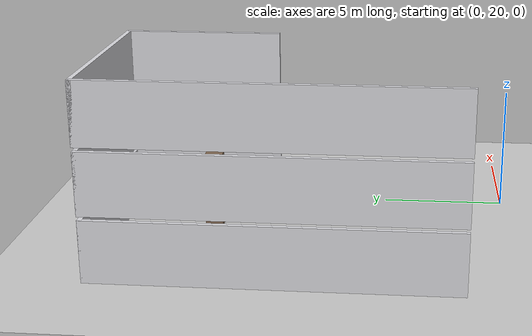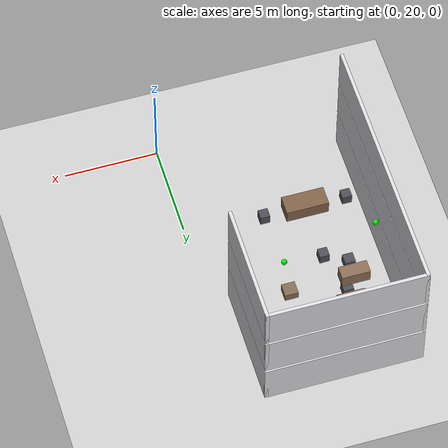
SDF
<sdf version="1.7">
 <world name="generated_world">
  <include><uri>model://sun</uri></include>
  <include><uri>model://ground_plane</uri></include>
  <model name="generated_building">
   <static>true</static>
   <link name="floor_0_room_2_corridor_wall_upper">
    <pose>-1.1900 32.7025 1.2250 0.0000 0.0000 0.0000</pose>
    <collision name="floor_0_room_2_corridor_wall_upper_collision">
     <geometry><box><size>0.1800 6.4150 2.4500</size></box></geometry>
    </collision>
    <visual name="floor_0_room_2_corridor_wall_upper_visual">
     <geometry><box><size>0.1800 6.4150 2.4500</size></box></geometry>
     <material><ambient>0.86 0.86 0.88 1</ambient><diffuse>0.86 0.86 0.88 1</diffuse></material>
    </visual>
    <gravity>false</gravity>
   </link>
   <link name="floor_0_room_2_west_wall">
    <pose>-9.4100 28.8950 1.2250 0.0000 0.0000 0.0000</pose>
    <collision name="floor_0_room_2_west_wall_collision">
     <geometry><box><size>0.1800 14.0300 2.4500</size></box></geometry>
    </collision>
    <visual name="floor_0_room_2_west_wall_visual">
     <geometry><box><size>0.1800 14.0300 2.4500</size></box></geometry>
     <material><ambient>0.86 0.86 0.88 1</ambient><diffuse>0.86 0.86 0.88 1</diffuse></material>
    </visual>
    <gravity>false</gravity>
   </link>
   <link name="floor_0_room_2_north_wall">
    <pose>-5.3000 35.8200 1.2250 0.0000 0.0000 0.0000</pose>
    <collision name="floor_0_room_2_north_wall_collision">
     <geometry><box><size>8.4000 0.1800 2.4500</size></box></geometry>
    </collision>
    <visual name="floor_0_room_2_north_wall_visual">
     <geometry><box><size>8.4000 0.1800 2.4500</size></box></geometry>
     <material><ambient>0.86 0.86 0.88 1</ambient><diffuse>0.86 0.86 0.88 1</diffuse></material>
    </visual>
    <gravity>false</gravity>
   </link>
   <link name="floor_0_room_2_desk">
    <pose>-7.0000 31.9525 0.4500 0.0000 0.0000 0.0000</pose>
    <collision name="floor_0_room_2_desk_collision">
     <geometry><box><size>1.5000 0.7000 0.7500</size></box></geometry>
    </collision>
    <visual name="floor_0_room_2_desk_visual">
     <geometry><box><size>1.5000 0.7000 0.7500</size></box></geometry>
     <material><ambient>0.54 0.43 0.34 1</ambient><diffuse>0.54 0.43 0.34 1</diffuse></material>
    </visual>
    <gravity>false</gravity>
   </link>
   <link name="floor_0_room_2_chair">
    <pose>-7.0000 31.0525 0.2800 0.0000 0.0000 0.0000</pose>
    <collision name="floor_0_room_2_chair_collision">
     <geometry><box><size>0.5500 0.5500 0.5500</size></box></geometry>
    </collision>
    <visual name="floor_0_room_2_chair_visual">
     <geometry><box><size>0.5500 0.5500 0.5500</size></box></geometry>
     <material><ambient>0.30 0.30 0.34 1</ambient><diffuse>0.30 0.30 0.34 1</diffuse></material>
    </visual>
    <gravity>false</gravity>
   </link>
   <link name="floor_0_room_2_side_table">
    <pose>-3.6000 31.9525 0.3200 0.0000 0.0000 0.0000</pose>
    <collision name="floor_0_room_2_side_table_collision">
     <geometry><box><size>0.7000 0.7000 0.4500</size></box></geometry>
    </collision>
    <visual name="floor_0_room_2_side_table_visual">
     <geometry><box><size>0.7000 0.7000 0.4500</size></box></geometry>
     <material><ambient>0.52 0.42 0.33 1</ambient><diffuse>0.52 0.42 0.33 1</diffuse></material>
    </visual>
    <gravity>false</gravity>
   </link>
   <link name="floor_1_room_2_corridor_wall_upper">
    <pose>-1.1900 32.7025 3.8250 0.0000 0.0000 0.0000</pose>
    <collision name="floor_1_room_2_corridor_wall_upper_collision">
     <geometry><box><size>0.1800 6.4150 2.4500</size></box></geometry>
    </collision>
    <visual name="floor_1_room_2_corridor_wall_upper_visual">
     <geometry><box><size>0.1800 6.4150 2.4500</size></box></geometry>
     <material><ambient>0.86 0.86 0.88 1</ambient><diffuse>0.86 0.86 0.88 1</diffuse></material>
    </visual>
    <gravity>false</gravity>
   </link>
   <link name="floor_1_room_2_west_wall">
    <pose>-9.4100 28.8950 3.8250 0.0000 0.0000 0.0000</pose>
    <collision name="floor_1_room_2_west_wall_collision">
     <geometry><box><size>0.1800 14.0300 2.4500</size></box></geometry>
    </collision>
    <visual name="floor_1_room_2_west_wall_visual">
     <geometry><box><size>0.1800 14.0300 2.4500</size></box></geometry>
     <material><ambient>0.86 0.86 0.88 1</ambient><diffuse>0.86 0.86 0.88 1</diffuse></material>
    </visual>
    <gravity>false</gravity>
   </link>
   <link name="floor_1_room_2_north_wall">
    <pose>-5.3000 35.8200 3.8250 0.0000 0.0000 0.0000</pose>
    <collision name="floor_1_room_2_north_wall_collision">
     <geometry><box><size>8.4000 0.1800 2.4500</size></box></geometry>
    </collision>
    <visual name="floor_1_room_2_north_wall_visual">
     <geometry><box><size>8.4000 0.1800 2.4500</size></box></geometry>
     <material><ambient>0.86 0.86 0.88 1</ambient><diffuse>0.86 0.86 0.88 1</diffuse></material>
    </visual>
    <gravity>false</gravity>
   </link>
   <link name="floor_1_room_2_desk">
    <pose>-7.0000 31.9525 3.0500 0.0000 0.0000 0.0000</pose>
    <collision name="floor_1_room_2_desk_collision">
     <geometry><box><size>1.5000 0.7000 0.7500</size></box></geometry>
    </collision>
    <visual name="floor_1_room_2_desk_visual">
     <geometry><box><size>1.5000 0.7000 0.7500</size></box></geometry>
     <material><ambient>0.54 0.43 0.34 1</ambient><diffuse>0.54 0.43 0.34 1</diffuse></material>
    </visual>
    <gravity>false</gravity>
   </link>
   <link name="floor_1_room_2_chair">
    <pose>-7.0000 31.0525 2.8800 0.0000 0.0000 0.0000</pose>
    <collision name="floor_1_room_2_chair_collision">
     <geometry><box><size>0.5500 0.5500 0.5500</size></box></geometry>
    </collision>
    <visual name="floor_1_room_2_chair_visual">
     <geometry><box><size>0.5500 0.5500 0.5500</size></box></geometry>
     <material><ambient>0.30 0.30 0.34 1</ambient><diffuse>0.30 0.30 0.34 1</diffuse></material>
    </visual>
    <gravity>false</gravity>
   </link>
   <link name="floor_1_room_2_side_table">
    <pose>-3.6000 31.9525 2.9200 0.0000 0.0000 0.0000</pose>
    <collision name="floor_1_room_2_side_table_collision">
     <geometry><box><size>0.7000 0.7000 0.4500</size></box></geometry>
    </collision>
    <visual name="floor_1_room_2_side_table_visual">
     <geometry><box><size>0.7000 0.7000 0.4500</size></box></geometry>
     <material><ambient>0.52 0.42 0.33 1</ambient><diffuse>0.52 0.42 0.33 1</diffuse></material>
    </visual>
    <gravity>false</gravity>
   </link>
   <link name="floor_2_room_2_corridor_wall_upper">
    <pose>-1.1900 32.7025 6.4250 0.0000 0.0000 0.0000</pose>
    <collision name="floor_2_room_2_corridor_wall_upper_collision">
     <geometry><box><size>0.1800 6.4150 2.4500</size></box></geometry>
    </collision>
    <visual name="floor_2_room_2_corridor_wall_upper_visual">
     <geometry><box><size>0.1800 6.4150 2.4500</size></box></geometry>
     <material><ambient>0.86 0.86 0.88 1</ambient><diffuse>0.86 0.86 0.88 1</diffuse></material>
    </visual>
    <gravity>false</gravity>
   </link>
   <link name="floor_2_room_2_west_wall">
    <pose>-9.4100 28.8950 6.4250 0.0000 0.0000 0.0000</pose>
    <collision name="floor_2_room_2_west_wall_collision">
     <geometry><box><size>0.1800 14.0300 2.4500</size></box></geometry>
    </collision>
    <visual name="floor_2_room_2_west_wall_visual">
     <geometry><box><size>0.1800 14.0300 2.4500</size></box></geometry>
     <material><ambient>0.86 0.86 0.88 1</ambient><diffuse>0.86 0.86 0.88 1</diffuse></material>
    </visual>
    <gravity>false</gravity>
   </link>
   <link name="floor_2_room_2_north_wall">
    <pose>-5.3000 35.8200 6.4250 0.0000 0.0000 0.0000</pose>
    <collision name="floor_2_room_2_north_wall_collision">
     <geometry><box><size>8.4000 0.1800 2.4500</size></box></geometry>
    </collision>
    <visual name="floor_2_room_2_north_wall_visual">
     <geometry><box><size>8.4000 0.1800 2.4500</size></box></geometry>
     <material><ambient>0.86 0.86 0.88 1</ambient><diffuse>0.86 0.86 0.88 1</diffuse></material>
    </visual>
    <gravity>false</gravity>
   </link>
   <link name="floor_2_room_2_table">
    <pose>-5.3000 28.8950 5.6500 0.0000 0.0000 0.0000</pose>
    <collision name="floor_2_room_2_table_collision">
     <geometry><box><size>2.2000 1.0000 0.7500</size></box></geometry>
    </collision>
    <visual name="floor_2_room_2_table_visual">
     <geometry><box><size>2.2000 1.0000 0.7500</size></box></geometry>
     <material><ambient>0.50 0.38 0.28 1</ambient><diffuse>0.50 0.38 0.28 1</diffuse></material>
    </visual>
    <gravity>false</gravity>
   </link>
   <link name="floor_2_room_2_chair_north">
    <pose>-5.3000 31.9525 5.4800 0.0000 0.0000 0.0000</pose>
    <collision name="floor_2_room_2_chair_north_collision">
     <geometry><box><size>0.5000 0.5000 0.5500</size></box></geometry>
    </collision>
    <visual name="floor_2_room_2_chair_north_visual">
     <geometry><box><size>0.5000 0.5000 0.5500</size></box></geometry>
     <material><ambient>0.30 0.30 0.34 1</ambient><diffuse>0.30 0.30 0.34 1</diffuse></material>
    </visual>
    <gravity>false</gravity>
   </link>
   <link name="floor_2_room_2_chair_west">
    <pose>-7.4500 28.8950 5.4800 0.0000 0.0000 1.5700</pose>
    <collision name="floor_2_room_2_chair_west_collision">
     <geometry><box><size>0.5000 0.5000 0.5500</size></box></geometry>
    </collision>
    <visual name="floor_2_room_2_chair_west_visual">
     <geometry><box><size>0.5000 0.5000 0.5500</size></box></geometry>
     <material><ambient>0.30 0.30 0.34 1</ambient><diffuse>0.30 0.30 0.34 1</diffuse></material>
    </visual>
    <gravity>false</gravity>
   </link>
   <link name="floor_2_room_2_chair_east">
    <pose>-3.1500 28.8950 5.4800 0.0000 0.0000 1.5700</pose>
    <collision name="floor_2_room_2_chair_east_collision">
     <geometry><box><size>0.5000 0.5000 0.5500</size></box></geometry>
    </collision>
    <visual name="floor_2_room_2_chair_east_visual">
     <geometry><box><size>0.5000 0.5000 0.5500</size></box></geometry>
     <material><ambient>0.30 0.30 0.34 1</ambient><diffuse>0.30 0.30 0.34 1</diffuse></material>
    </visual>
    <gravity>false</gravity>
   </link>
  </model>
  <model name="danger_red_sphere_00">
   <static>true</static>
   <pose>-7.222754 33.367043 0.150000 0.000000 0.000000 0.000000</pose>
   <link name="link">
    <collision name="collision"><geometry><sphere><radius>0.150</radius></sphere></geometry></collision>
    <visual name="visual">
     <geometry><sphere><radius>0.150</radius></sphere></geometry>
     <material><ambient>1.0 0.0 0.0 1.0</ambient><diffuse>1.0 0.0 0.0 1.0</diffuse></material>
    </visual>
   </link>
  </model>
  <model name="distractor_red_box_02">
   <static>true</static>
   <pose>-4.946377 34.732240 2.750000 0.000000 0.000000 0.000000</pose>
   <link name="link">
    <collision name="collision">
     <geometry><box><size>0.300000 0.300000 0.300000</size></box></geometry>
    </collision>
    <visual name="visual">
     <geometry><box><size>0.300000 0.300000 0.300000</size></box></geometry>
     <material><ambient>1.0 0.0 0.0 1.0</ambient><diffuse>1.0 0.0 0.0 1.0</diffuse></material>
    </visual>
   </link>
  </model>
  <model name="distractor_green_sphere_04">
   <static>true</static>
   <pose>-8.442959 30.759479 5.350000 0.000000 0.000000 0.000000</pose>
   <link name="link">
    <collision name="collision"><geometry><sphere><radius>0.150</radius></sphere></geometry></collision>
    <visual name="visual">
     <geometry><sphere><radius>0.150</radius></sphere></geometry>
     <material><ambient>0.0 1.0 0.0 1.0</ambient><diffuse>0.0 1.0 0.0 1.0</diffuse></material>
    </visual>
   </link>
  </model>
  <model name="distractor_green_sphere_07">
   <static>true</static>
   <pose>-3.355321 31.711811 5.350000 0.000000 0.000000 0.000000</pose>
   <link name="link">
    <collision name="collision"><geometry><sphere><radius>0.150</radius></sphere></geometry></collision>
    <visual name="visual">
     <geometry><sphere><radius>0.150</radius></sphere></geometry>
     <material><ambient>0.0 1.0 0.0 1.0</ambient><diffuse>0.0 1.0 0.0 1.0</diffuse></material>
    </visual>
   </link>
  </model>
 </world>
</sdf>
